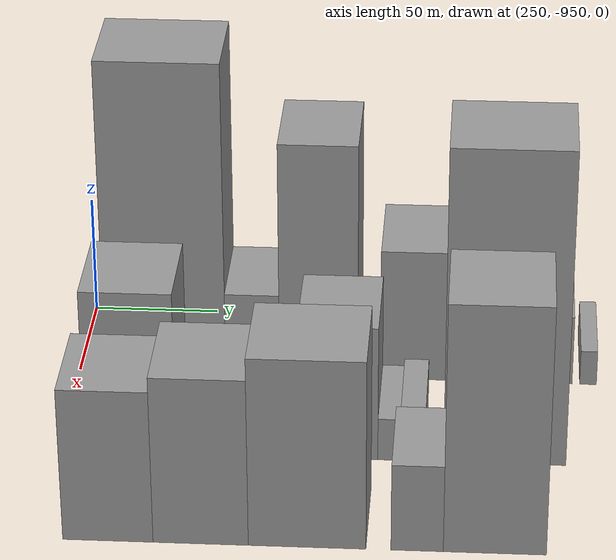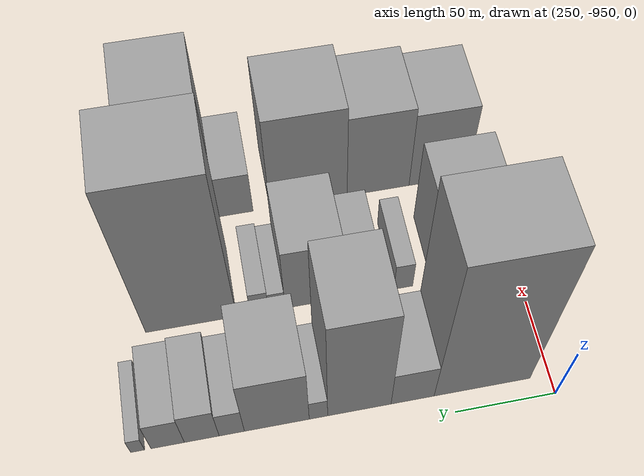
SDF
<sdf version="1.6">
 <world name="default">
  <model name="building_169">
   <static>1</static>
   <pose>280.0000 -915.8749 0 0.000000 0.000000 0.000000</pose>
   <link name="link">
    <pose>0 0 67.50 0 0 0</pose>
    <collision name="collision"><geometry><box><size>40.0000 48.2502 135.0000</size></box></geometry></collision>
    <visual name="visual">
     <cast_shadows>0</cast_shadows>
     <geometry><box><size>40.0000 48.2502 135.0000</size></box></geometry>
     <material>
      <script>
       <uri>model://grey_wall/materials/scripts</uri>
       <uri>model://grey_wall/materials/textures</uri>
       <name>vrc/grey_wall</name>
      </script>
     </material>
    </visual>
   </link>
  </model>
  <model name="building_170">
   <static>1</static>
   <pose>280.0000 -881.0694 0 0.000000 0.000000 0.000000</pose>
   <link name="link">
    <pose>0 0 18.00 0 0 0</pose>
    <collision name="collision"><geometry><box><size>40.0000 21.3608 36.0000</size></box></geometry></collision>
    <visual name="visual">
     <cast_shadows>0</cast_shadows>
     <geometry><box><size>40.0000 21.3608 36.0000</size></box></geometry>
     <material>
      <script>
       <uri>model://grey_wall/materials/scripts</uri>
       <uri>model://grey_wall/materials/textures</uri>
       <name>vrc/grey_wall</name>
      </script>
     </material>
    </visual>
   </link>
  </model>
  <model name="building_171">
   <static>1</static>
   <pose>280.0000 -854.8173 0 0.000000 0.000000 0.000000</pose>
   <link name="link">
    <pose>0 0 51.00 0 0 0</pose>
    <collision name="collision"><geometry><box><size>40.0000 31.1434 102.0000</size></box></geometry></collision>
    <visual name="visual">
     <cast_shadows>0</cast_shadows>
     <geometry><box><size>40.0000 31.1434 102.0000</size></box></geometry>
     <material>
      <script>
       <uri>model://grey_wall/materials/scripts</uri>
       <uri>model://grey_wall/materials/textures</uri>
       <name>vrc/grey_wall</name>
      </script>
     </material>
    </visual>
   </link>
  </model>
  <model name="building_172">
   <static>1</static>
   <pose>280.0000 -834.7707 0 0.000000 0.000000 0.000000</pose>
   <link name="link">
    <pose>0 0 10.50 0 0 0</pose>
    <collision name="collision"><geometry><box><size>40.0000 8.9498 21.0000</size></box></geometry></collision>
    <visual name="visual">
     <cast_shadows>0</cast_shadows>
     <geometry><box><size>40.0000 8.9498 21.0000</size></box></geometry>
     <material>
      <script>
       <uri>model://grey_wall/materials/scripts</uri>
       <uri>model://grey_wall/materials/textures</uri>
       <name>vrc/grey_wall</name>
      </script>
     </material>
    </visual>
   </link>
  </model>
  <model name="building_173">
   <static>1</static>
   <pose>280.0000 -814.6395 0 0.000000 0.000000 0.000000</pose>
   <link name="link">
    <pose>0 0 28.50 0 0 0</pose>
    <collision name="collision"><geometry><box><size>40.0000 31.3126 57.0000</size></box></geometry></collision>
    <visual name="visual">
     <cast_shadows>0</cast_shadows>
     <geometry><box><size>40.0000 31.3126 57.0000</size></box></geometry>
     <material>
      <script>
       <uri>model://grey_wall/materials/scripts</uri>
       <uri>model://grey_wall/materials/textures</uri>
       <name>vrc/grey_wall</name>
      </script>
     </material>
    </visual>
   </link>
  </model>
  <model name="building_174">
   <static>1</static>
   <pose>280.0000 -792.9225 0 0.000000 0.000000 0.000000</pose>
   <link name="link">
    <pose>0 0 13.50 0 0 0</pose>
    <collision name="collision"><geometry><box><size>40.0000 12.1213 27.0000</size></box></geometry></collision>
    <visual name="visual">
     <cast_shadows>0</cast_shadows>
     <geometry><box><size>40.0000 12.1213 27.0000</size></box></geometry>
     <material>
      <script>
       <uri>model://grey_wall/materials/scripts</uri>
       <uri>model://grey_wall/materials/textures</uri>
       <name>vrc/grey_wall</name>
      </script>
     </material>
    </visual>
   </link>
  </model>
  <model name="building_175">
   <static>1</static>
   <pose>280.0000 -778.5787 0 0.000000 0.000000 0.000000</pose>
   <link name="link">
    <pose>0 0 16.50 0 0 0</pose>
    <collision name="collision"><geometry><box><size>40.0000 16.5662 33.0000</size></box></geometry></collision>
    <visual name="visual">
     <cast_shadows>0</cast_shadows>
     <geometry><box><size>40.0000 16.5662 33.0000</size></box></geometry>
     <material>
      <script>
       <uri>model://grey_wall/materials/scripts</uri>
       <uri>model://grey_wall/materials/textures</uri>
       <name>vrc/grey_wall</name>
      </script>
     </material>
    </visual>
   </link>
  </model>
  <model name="building_176">
   <static>1</static>
   <pose>280.0000 -762.4127 0 0.000000 0.000000 0.000000</pose>
   <link name="link">
    <pose>0 0 15.00 0 0 0</pose>
    <collision name="collision"><geometry><box><size>40.0000 15.7658 30.0000</size></box></geometry></collision>
    <visual name="visual">
     <cast_shadows>0</cast_shadows>
     <geometry><box><size>40.0000 15.7658 30.0000</size></box></geometry>
     <material>
      <script>
       <uri>model://grey_wall/materials/scripts</uri>
       <uri>model://grey_wall/materials/textures</uri>
       <name>vrc/grey_wall</name>
      </script>
     </material>
    </visual>
   </link>
  </model>
  <model name="building_177">
   <static>1</static>
   <pose>280.0000 -748.2417 0 0.000000 0.000000 0.000000</pose>
   <link name="link">
    <pose>0 0 7.50 0 0 0</pose>
    <collision name="collision"><geometry><box><size>40.0000 6.5762 15.0000</size></box></geometry></collision>
    <visual name="visual">
     <cast_shadows>0</cast_shadows>
     <geometry><box><size>40.0000 6.5762 15.0000</size></box></geometry>
     <material>
      <script>
       <uri>model://grey_wall/materials/scripts</uri>
       <uri>model://grey_wall/materials/textures</uri>
       <name>vrc/grey_wall</name>
      </script>
     </material>
    </visual>
   </link>
  </model>
  <model name="building_226">
   <static>1</static>
   <pose>340.0000 -922.5686 0 0.000000 0.000000 0.000000</pose>
   <link name="link">
    <pose>0 0 34.50 0 0 0</pose>
    <collision name="collision"><geometry><box><size>40.0000 34.8629 69.0000</size></box></geometry></collision>
    <visual name="visual">
     <cast_shadows>0</cast_shadows>
     <geometry><box><size>40.0000 34.8629 69.0000</size></box></geometry>
     <material>
      <script>
       <uri>model://grey_wall/materials/scripts</uri>
       <uri>model://grey_wall/materials/textures</uri>
       <name>vrc/grey_wall</name>
      </script>
     </material>
    </visual>
   </link>
  </model>
  <model name="building_227">
   <static>1</static>
   <pose>340.0000 -890.2171 0 0.000000 0.000000 0.000000</pose>
   <link name="link">
    <pose>0 0 12.00 0 0 0</pose>
    <collision name="collision"><geometry><box><size>40.0000 9.8400 24.0000</size></box></geometry></collision>
    <visual name="visual">
     <cast_shadows>0</cast_shadows>
     <geometry><box><size>40.0000 9.8400 24.0000</size></box></geometry>
     <material>
      <script>
       <uri>model://grey_wall/materials/scripts</uri>
       <uri>model://grey_wall/materials/textures</uri>
       <name>vrc/grey_wall</name>
      </script>
     </material>
    </visual>
   </link>
  </model>
  <model name="building_228">
   <static>1</static>
   <pose>340.0000 -868.1741 0 0.000000 0.000000 0.000000</pose>
   <link name="link">
    <pose>0 0 18.00 0 0 0</pose>
    <collision name="collision"><geometry><box><size>40.0000 18.2460 36.0000</size></box></geometry></collision>
    <visual name="visual">
     <cast_shadows>0</cast_shadows>
     <geometry><box><size>40.0000 18.2460 36.0000</size></box></geometry>
     <material>
      <script>
       <uri>model://grey_wall/materials/scripts</uri>
       <uri>model://grey_wall/materials/textures</uri>
       <name>vrc/grey_wall</name>
      </script>
     </material>
    </visual>
   </link>
  </model>
  <model name="building_229">
   <static>1</static>
   <pose>340.0000 -843.8335 0 0.000000 0.000000 0.000000</pose>
   <link name="link">
    <pose>0 0 28.50 0 0 0</pose>
    <collision name="collision"><geometry><box><size>40.0000 30.4353 57.0000</size></box></geometry></collision>
    <visual name="visual">
     <cast_shadows>0</cast_shadows>
     <geometry><box><size>40.0000 30.4353 57.0000</size></box></geometry>
     <material>
      <script>
       <uri>model://grey_wall/materials/scripts</uri>
       <uri>model://grey_wall/materials/textures</uri>
       <name>vrc/grey_wall</name>
      </script>
     </material>
    </visual>
   </link>
  </model>
  <model name="building_230">
   <static>1</static>
   <pose>340.0000 -824.3652 0 0.000000 0.000000 0.000000</pose>
   <link name="link">
    <pose>0 0 9.00 0 0 0</pose>
    <collision name="collision"><geometry><box><size>40.0000 8.5012 18.0000</size></box></geometry></collision>
    <visual name="visual">
     <cast_shadows>0</cast_shadows>
     <geometry><box><size>40.0000 8.5012 18.0000</size></box></geometry>
     <material>
      <script>
       <uri>model://grey_wall/materials/scripts</uri>
       <uri>model://grey_wall/materials/textures</uri>
       <name>vrc/grey_wall</name>
      </script>
     </material>
    </visual>
   </link>
  </model>
  <model name="building_231">
   <static>1</static>
   <pose>340.0000 -815.4228 0 0.000000 0.000000 0.000000</pose>
   <link name="link">
    <pose>0 0 10.50 0 0 0</pose>
    <collision name="collision"><geometry><box><size>40.0000 9.3835 21.0000</size></box></geometry></collision>
    <visual name="visual">
     <cast_shadows>0</cast_shadows>
     <geometry><box><size>40.0000 9.3835 21.0000</size></box></geometry>
     <material>
      <script>
       <uri>model://grey_wall/materials/scripts</uri>
       <uri>model://grey_wall/materials/textures</uri>
       <name>vrc/grey_wall</name>
      </script>
     </material>
    </visual>
   </link>
  </model>
  <model name="building_232">
   <static>1</static>
   <pose>340.0000 -780.7042 0 0.000000 0.000000 0.000000</pose>
   <link name="link">
    <pose>0 0 66.00 0 0 0</pose>
    <collision name="collision"><geometry><box><size>40.0000 46.0537 132.0000</size></box></geometry></collision>
    <visual name="visual">
     <cast_shadows>0</cast_shadows>
     <geometry><box><size>40.0000 46.0537 132.0000</size></box></geometry>
     <material>
      <script>
       <uri>model://grey_wall/materials/scripts</uri>
       <uri>model://grey_wall/materials/textures</uri>
       <name>vrc/grey_wall</name>
      </script>
     </material>
    </visual>
   </link>
  </model>
  <model name="building_286">
   <static>1</static>
   <pose>400.0000 -923.5723 0 0.000000 0.000000 0.000000</pose>
   <link name="link">
    <pose>0 0 31.50 0 0 0</pose>
    <collision name="collision"><geometry><box><size>40.0000 32.8555 63.0000</size></box></geometry></collision>
    <visual name="visual">
     <cast_shadows>0</cast_shadows>
     <geometry><box><size>40.0000 32.8555 63.0000</size></box></geometry>
     <material>
      <script>
       <uri>model://grey_wall/materials/scripts</uri>
       <uri>model://grey_wall/materials/textures</uri>
       <name>vrc/grey_wall</name>
      </script>
     </material>
    </visual>
   </link>
  </model>
  <model name="building_287">
   <static>1</static>
   <pose>400.0000 -889.8858 0 0.000000 0.000000 0.000000</pose>
   <link name="link">
    <pose>0 0 34.50 0 0 0</pose>
    <collision name="collision"><geometry><box><size>40.0000 34.5174 69.0000</size></box></geometry></collision>
    <visual name="visual">
     <cast_shadows>0</cast_shadows>
     <geometry><box><size>40.0000 34.5174 69.0000</size></box></geometry>
     <material>
      <script>
       <uri>model://grey_wall/materials/scripts</uri>
       <uri>model://grey_wall/materials/textures</uri>
       <name>vrc/grey_wall</name>
      </script>
     </material>
    </visual>
   </link>
  </model>
  <model name="building_288">
   <static>1</static>
   <pose>400.0000 -851.3845 0 0.000000 0.000000 0.000000</pose>
   <link name="link">
    <pose>0 0 39.00 0 0 0</pose>
    <collision name="collision"><geometry><box><size>40.0000 42.4851 78.0000</size></box></geometry></collision>
    <visual name="visual">
     <cast_shadows>0</cast_shadows>
     <geometry><box><size>40.0000 42.4851 78.0000</size></box></geometry>
     <material>
      <script>
       <uri>model://grey_wall/materials/scripts</uri>
       <uri>model://grey_wall/materials/textures</uri>
       <name>vrc/grey_wall</name>
      </script>
     </material>
    </visual>
   </link>
  </model>
  <model name="building_289">
   <static>1</static>
   <pose>400.0000 -811.7156 0 0.000000 0.000000 0.000000</pose>
   <link name="link">
    <pose>0 0 18.00 0 0 0</pose>
    <collision name="collision"><geometry><box><size>40.0000 18.8527 36.0000</size></box></geometry></collision>
    <visual name="visual">
     <cast_shadows>0</cast_shadows>
     <geometry><box><size>40.0000 18.8527 36.0000</size></box></geometry>
     <material>
      <script>
       <uri>model://grey_wall/materials/scripts</uri>
       <uri>model://grey_wall/materials/textures</uri>
       <name>vrc/grey_wall</name>
      </script>
     </material>
    </visual>
   </link>
  </model>
  <model name="building_290">
   <static>1</static>
   <pose>400.0000 -783.7796 0 0.000000 0.000000 0.000000</pose>
   <link name="link">
    <pose>0 0 51.00 0 0 0</pose>
    <collision name="collision"><geometry><box><size>40.0000 37.0194 102.0000</size></box></geometry></collision>
    <visual name="visual">
     <cast_shadows>0</cast_shadows>
     <geometry><box><size>40.0000 37.0194 102.0000</size></box></geometry>
     <material>
      <script>
       <uri>model://grey_wall/materials/scripts</uri>
       <uri>model://grey_wall/materials/textures</uri>
       <name>vrc/grey_wall</name>
      </script>
     </material>
    </visual>
   </link>
  </model>
 </world>
</sdf>
